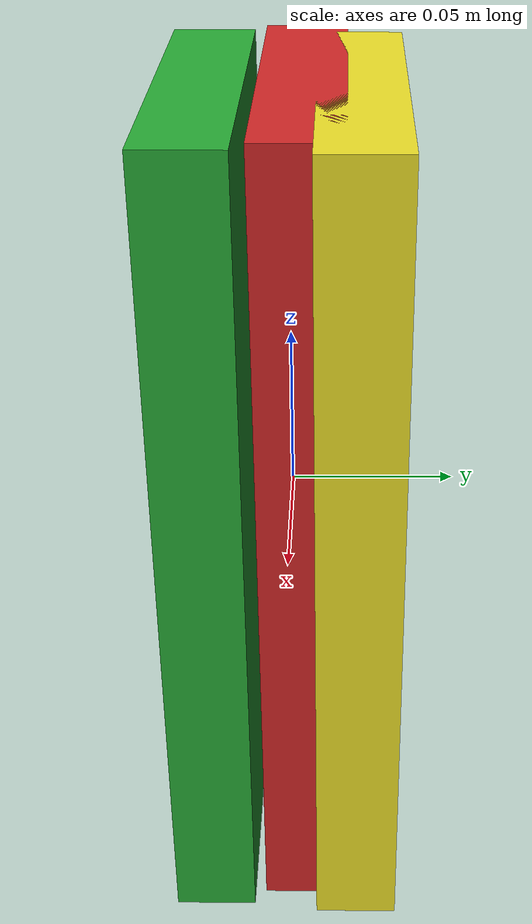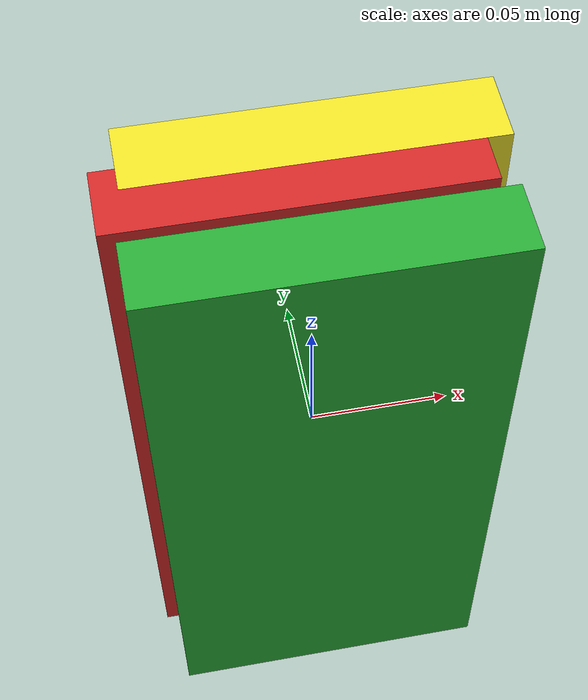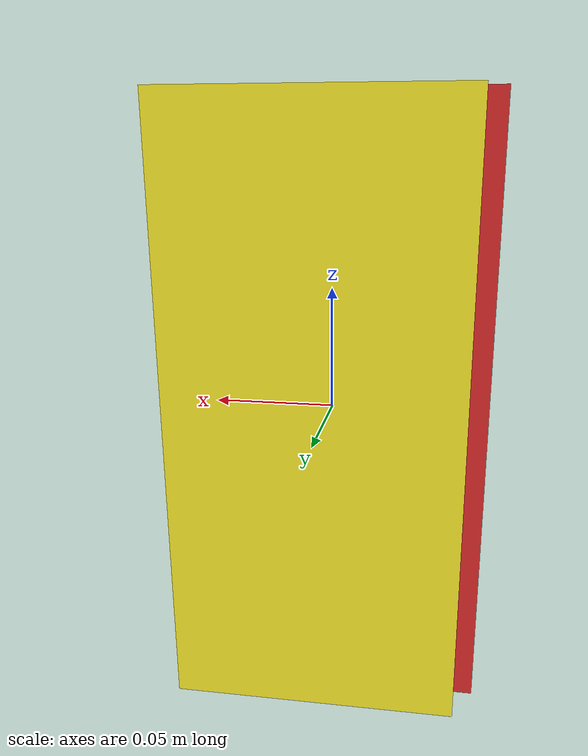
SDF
<?xml version='1.0'?>
<sdf version='1.6'>
  <model name='traffic_light'>
    <model name='traffic_light_green'>
      <pose frame=''>0.000769 -0.024461 0 0 -0 0</pose>
      <link name='box'>
        <pose frame=''>0 0 0 0 -0 0</pose>
        <collision name='collision'>
          <geometry>
            <box>
              <size>0.12 0.025 0.25</size>
            </box>
          </geometry>
        </collision>
        <visual name='visual'>
          <geometry>
            <box>
              <size>0.12 0.025 0.25</size>
            </box>
          </geometry>
          <material>
            <script>
              <uri>model://traffic_light_green/materials/scripts</uri>
              <uri>model://traffic_light_green/materials/textures</uri>
              <name>traffic_light_green</name>
            </script>
          </material>
        </visual>
      </link>
    </model>
    <model name='traffic_light_red'>
      <pose frame=''>-0.004506 0.003947 0 0 -0 0</pose>
      <link name='box'>
        <pose frame=''>0 0 0 0 -0 0</pose>
        <collision name='collision'>
          <geometry>
            <box>
              <size>0.12 0.025 0.25</size>
            </box>
          </geometry>
        </collision>
        <visual name='visual'>
          <geometry>
            <box>
              <size>0.12 0.025 0.25</size>
            </box>
          </geometry>
          <material>
            <script>
              <uri>model://traffic_light_red/materials/scripts</uri>
              <uri>model://traffic_light_red/materials/textures</uri>
              <name>traffic_light_red</name>
            </script>
          </material>
        </visual>
      </link>
    </model>
    <model name='traffic_light_yellow'>
      <pose frame=''>0.003737 0.020508 0 0 -0 0</pose>
      <link name='box'>
        <pose frame=''>0 0 0 0 -0 0</pose>
        <collision name='collision'>
          <geometry>
            <box>
              <size>0.12 0.025 0.25</size>
            </box>
          </geometry>
        </collision>
        <visual name='visual'>
          <geometry>
            <box>
              <size>0.12 0.025 0.25</size>
            </box>
          </geometry>
          <material>
            <script>
              <uri>model://traffic_light_yellow/materials/scripts</uri>
              <uri>model://traffic_light_yellow/materials/textures</uri>
              <name>traffic_light_yellow</name>
            </script>
          </material>
        </visual>
      </link>
    </model>
    <static>0</static>
    <allow_auto_disable>1</allow_auto_disable>
  </model>
</sdf>
